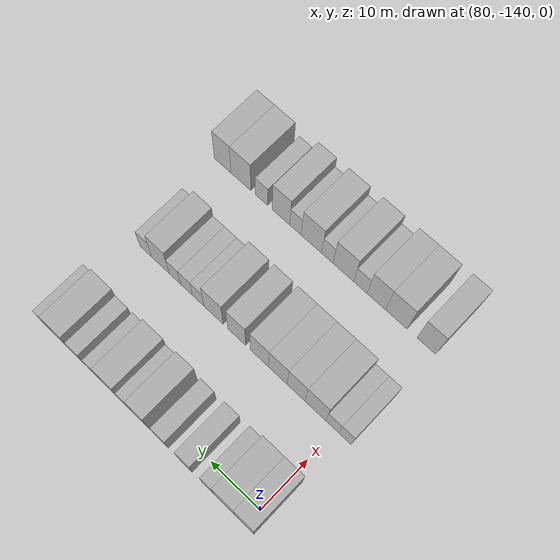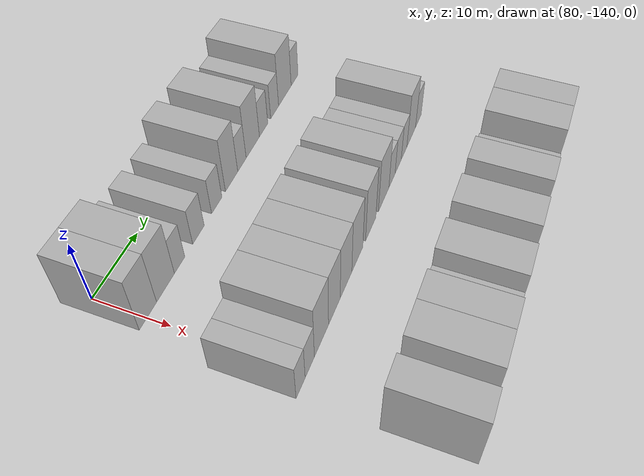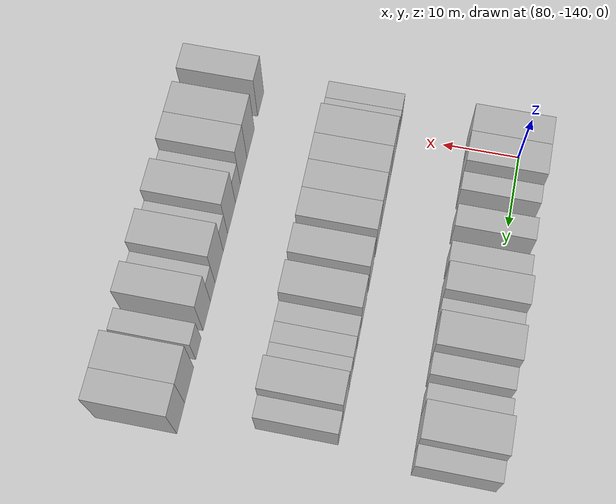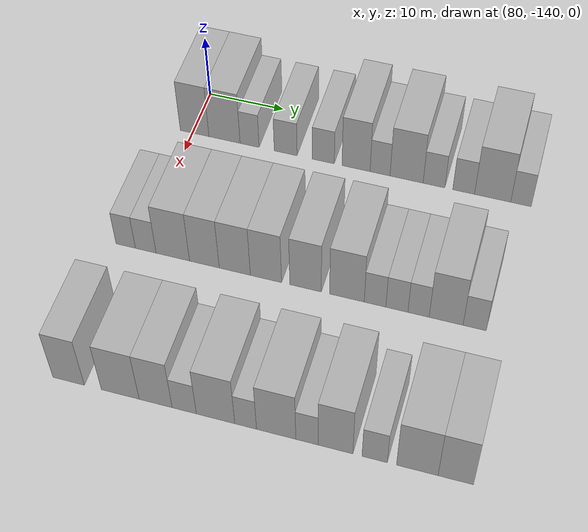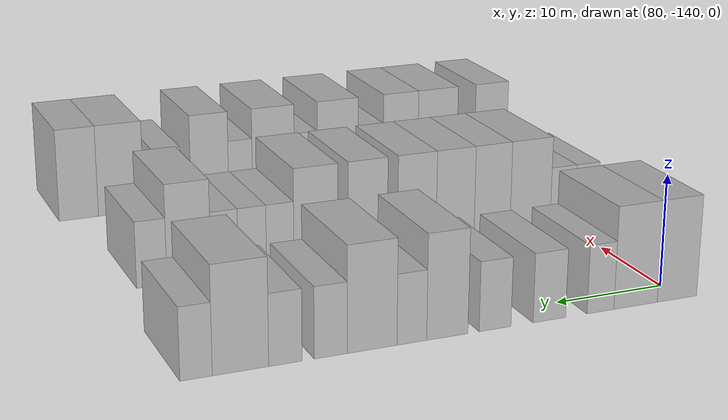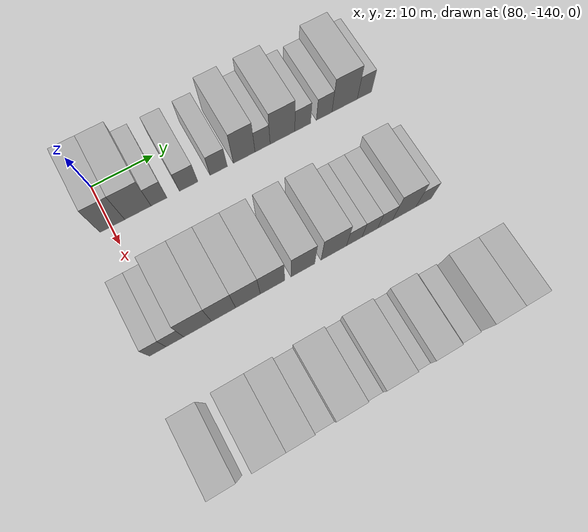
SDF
<sdf version="1.6">
 <world name="default">
  <model name="building_572">
   <static>1</static>
   <pose>82.0000 -139.7376 0 0.000000 0.000000 0.000000</pose>
   <link name="link">
    <pose>0 0 4.50 0 0 0</pose>
    <collision name="collision"><geometry><box><size>10.0000 3.8432 9.0000</size></box></geometry></collision>
    <visual name="visual">
     <cast_shadows>0</cast_shadows>
     <geometry><box><size>10.0000 3.8432 9.0000</size></box></geometry>
     <material>
      <script>
       <uri>model://HANNAS_wall/materials/scripts</uri>
       <uri>model://HANNAS_wall/materials/textures</uri>
       <name>vrc/HANNAS_wall</name>
      </script>
     </material>
    </visual>
   </link>
  </model>
  <model name="building_573">
   <static>1</static>
   <pose>82.0000 -135.7377 0 0.000000 0.000000 0.000000</pose>
   <link name="link">
    <pose>0 0 4.50 0 0 0</pose>
    <collision name="collision"><geometry><box><size>10.0000 4.1565 9.0000</size></box></geometry></collision>
    <visual name="visual">
     <cast_shadows>0</cast_shadows>
     <geometry><box><size>10.0000 4.1565 9.0000</size></box></geometry>
     <material>
      <script>
       <uri>model://HANNAS_wall/materials/scripts</uri>
       <uri>model://HANNAS_wall/materials/textures</uri>
       <name>vrc/HANNAS_wall</name>
      </script>
     </material>
    </visual>
   </link>
  </model>
  <model name="building_574">
   <static>1</static>
   <pose>82.0000 -132.3970 0 0.000000 0.000000 0.000000</pose>
   <link name="link">
    <pose>0 0 3.00 0 0 0</pose>
    <collision name="collision"><geometry><box><size>10.0000 2.5249 6.0000</size></box></geometry></collision>
    <visual name="visual">
     <cast_shadows>0</cast_shadows>
     <geometry><box><size>10.0000 2.5249 6.0000</size></box></geometry>
     <material>
      <script>
       <uri>model://HANNAS_wall/materials/scripts</uri>
       <uri>model://HANNAS_wall/materials/textures</uri>
       <name>vrc/HANNAS_wall</name>
      </script>
     </material>
    </visual>
   </link>
  </model>
  <model name="building_575">
   <static>1</static>
   <pose>82.0000 -127.6400 0 0.000000 0.000000 0.000000</pose>
   <link name="link">
    <pose>0 0 3.00 0 0 0</pose>
    <collision name="collision"><geometry><box><size>10.0000 2.9891 6.0000</size></box></geometry></collision>
    <visual name="visual">
     <cast_shadows>0</cast_shadows>
     <geometry><box><size>10.0000 2.9891 6.0000</size></box></geometry>
     <material>
      <script>
       <uri>model://HANNAS_wall/materials/scripts</uri>
       <uri>model://HANNAS_wall/materials/textures</uri>
       <name>vrc/HANNAS_wall</name>
      </script>
     </material>
    </visual>
   </link>
  </model>
  <model name="building_576">
   <static>1</static>
   <pose>82.0000 -122.7217 0 0.000000 0.000000 0.000000</pose>
   <link name="link">
    <pose>0 0 3.00 0 0 0</pose>
    <collision name="collision"><geometry><box><size>10.0000 2.8474 6.0000</size></box></geometry></collision>
    <visual name="visual">
     <cast_shadows>0</cast_shadows>
     <geometry><box><size>10.0000 2.8474 6.0000</size></box></geometry>
     <material>
      <script>
       <uri>model://HANNAS_wall/materials/scripts</uri>
       <uri>model://HANNAS_wall/materials/textures</uri>
       <name>vrc/HANNAS_wall</name>
      </script>
     </material>
    </visual>
   </link>
  </model>
  <model name="building_577">
   <static>1</static>
   <pose>82.0000 -118.4914 0 0.000000 0.000000 0.000000</pose>
   <link name="link">
    <pose>0 0 4.50 0 0 0</pose>
    <collision name="collision"><geometry><box><size>10.0000 3.6134 9.0000</size></box></geometry></collision>
    <visual name="visual">
     <cast_shadows>0</cast_shadows>
     <geometry><box><size>10.0000 3.6134 9.0000</size></box></geometry>
     <material>
      <script>
       <uri>model://HANNAS_wall/materials/scripts</uri>
       <uri>model://HANNAS_wall/materials/textures</uri>
       <name>vrc/HANNAS_wall</name>
      </script>
     </material>
    </visual>
   </link>
  </model>
  <model name="building_578">
   <static>1</static>
   <pose>82.0000 -115.4076 0 0.000000 0.000000 0.000000</pose>
   <link name="link">
    <pose>0 0 3.00 0 0 0</pose>
    <collision name="collision"><geometry><box><size>10.0000 2.5542 6.0000</size></box></geometry></collision>
    <visual name="visual">
     <cast_shadows>0</cast_shadows>
     <geometry><box><size>10.0000 2.5542 6.0000</size></box></geometry>
     <material>
      <script>
       <uri>model://HANNAS_wall/materials/scripts</uri>
       <uri>model://HANNAS_wall/materials/textures</uri>
       <name>vrc/HANNAS_wall</name>
      </script>
     </material>
    </visual>
   </link>
  </model>
  <model name="building_579">
   <static>1</static>
   <pose>82.0000 -112.0254 0 0.000000 0.000000 0.000000</pose>
   <link name="link">
    <pose>0 0 4.50 0 0 0</pose>
    <collision name="collision"><geometry><box><size>10.0000 4.2101 9.0000</size></box></geometry></collision>
    <visual name="visual">
     <cast_shadows>0</cast_shadows>
     <geometry><box><size>10.0000 4.2101 9.0000</size></box></geometry>
     <material>
      <script>
       <uri>model://HANNAS_wall/materials/scripts</uri>
       <uri>model://HANNAS_wall/materials/textures</uri>
       <name>vrc/HANNAS_wall</name>
      </script>
     </material>
    </visual>
   </link>
  </model>
  <model name="building_580">
   <static>1</static>
   <pose>82.0000 -108.5517 0 0.000000 0.000000 0.000000</pose>
   <link name="link">
    <pose>0 0 3.00 0 0 0</pose>
    <collision name="collision"><geometry><box><size>10.0000 2.7372 6.0000</size></box></geometry></collision>
    <visual name="visual">
     <cast_shadows>0</cast_shadows>
     <geometry><box><size>10.0000 2.7372 6.0000</size></box></geometry>
     <material>
      <script>
       <uri>model://HANNAS_wall/materials/scripts</uri>
       <uri>model://HANNAS_wall/materials/textures</uri>
       <name>vrc/HANNAS_wall</name>
      </script>
     </material>
    </visual>
   </link>
  </model>
  <model name="building_581">
   <static>1</static>
   <pose>82.0000 -104.8235 0 0.000000 0.000000 0.000000</pose>
   <link name="link">
    <pose>0 0 3.00 0 0 0</pose>
    <collision name="collision"><geometry><box><size>10.0000 2.7193 6.0000</size></box></geometry></collision>
    <visual name="visual">
     <cast_shadows>0</cast_shadows>
     <geometry><box><size>10.0000 2.7193 6.0000</size></box></geometry>
     <material>
      <script>
       <uri>model://HANNAS_wall/materials/scripts</uri>
       <uri>model://HANNAS_wall/materials/textures</uri>
       <name>vrc/HANNAS_wall</name>
      </script>
     </material>
    </visual>
   </link>
  </model>
  <model name="building_582">
   <static>1</static>
   <pose>82.0000 -101.2158 0 0.000000 0.000000 0.000000</pose>
   <link name="link">
    <pose>0 0 4.50 0 0 0</pose>
    <collision name="collision"><geometry><box><size>10.0000 4.4960 9.0000</size></box></geometry></collision>
    <visual name="visual">
     <cast_shadows>0</cast_shadows>
     <geometry><box><size>10.0000 4.4960 9.0000</size></box></geometry>
     <material>
      <script>
       <uri>model://HANNAS_wall/materials/scripts</uri>
       <uri>model://HANNAS_wall/materials/textures</uri>
       <name>vrc/HANNAS_wall</name>
      </script>
     </material>
    </visual>
   </link>
  </model>
  <model name="building_583">
   <static>1</static>
   <pose>82.0000 -97.6977 0 0.000000 0.000000 0.000000</pose>
   <link name="link">
    <pose>0 0 3.00 0 0 0</pose>
    <collision name="collision"><geometry><box><size>10.0000 2.5402 6.0000</size></box></geometry></collision>
    <visual name="visual">
     <cast_shadows>0</cast_shadows>
     <geometry><box><size>10.0000 2.5402 6.0000</size></box></geometry>
     <material>
      <script>
       <uri>model://HANNAS_wall/materials/scripts</uri>
       <uri>model://HANNAS_wall/materials/textures</uri>
       <name>vrc/HANNAS_wall</name>
      </script>
     </material>
    </visual>
   </link>
  </model>
  <model name="building_748">
   <static>1</static>
   <pose>101.0000 -141.8293 0 0.000000 0.000000 0.000000</pose>
   <link name="link">
    <pose>0 0 3.00 0 0 0</pose>
    <collision name="collision"><geometry><box><size>10.0000 2.4516 6.0000</size></box></geometry></collision>
    <visual name="visual">
     <cast_shadows>0</cast_shadows>
     <geometry><box><size>10.0000 2.4516 6.0000</size></box></geometry>
     <material>
      <script>
       <uri>model://HANNAS_wall/materials/scripts</uri>
       <uri>model://HANNAS_wall/materials/textures</uri>
       <name>vrc/HANNAS_wall</name>
      </script>
     </material>
    </visual>
   </link>
  </model>
  <model name="building_749">
   <static>1</static>
   <pose>101.0000 -139.2995 0 0.000000 0.000000 0.000000</pose>
   <link name="link">
    <pose>0 0 3.00 0 0 0</pose>
    <collision name="collision"><geometry><box><size>10.0000 2.6080 6.0000</size></box></geometry></collision>
    <visual name="visual">
     <cast_shadows>0</cast_shadows>
     <geometry><box><size>10.0000 2.6080 6.0000</size></box></geometry>
     <material>
      <script>
       <uri>model://HANNAS_wall/materials/scripts</uri>
       <uri>model://HANNAS_wall/materials/textures</uri>
       <name>vrc/HANNAS_wall</name>
      </script>
     </material>
    </visual>
   </link>
  </model>
  <model name="building_750">
   <static>1</static>
   <pose>101.0000 -135.8987 0 0.000000 0.000000 0.000000</pose>
   <link name="link">
    <pose>0 0 4.50 0 0 0</pose>
    <collision name="collision"><geometry><box><size>10.0000 4.1936 9.0000</size></box></geometry></collision>
    <visual name="visual">
     <cast_shadows>0</cast_shadows>
     <geometry><box><size>10.0000 4.1936 9.0000</size></box></geometry>
     <material>
      <script>
       <uri>model://HANNAS_wall/materials/scripts</uri>
       <uri>model://HANNAS_wall/materials/textures</uri>
       <name>vrc/HANNAS_wall</name>
      </script>
     </material>
    </visual>
   </link>
  </model>
  <model name="building_751">
   <static>1</static>
   <pose>101.0000 -131.9583 0 0.000000 0.000000 0.000000</pose>
   <link name="link">
    <pose>0 0 4.50 0 0 0</pose>
    <collision name="collision"><geometry><box><size>10.0000 3.6871 9.0000</size></box></geometry></collision>
    <visual name="visual">
     <cast_shadows>0</cast_shadows>
     <geometry><box><size>10.0000 3.6871 9.0000</size></box></geometry>
     <material>
      <script>
       <uri>model://HANNAS_wall/materials/scripts</uri>
       <uri>model://HANNAS_wall/materials/textures</uri>
       <name>vrc/HANNAS_wall</name>
      </script>
     </material>
    </visual>
   </link>
  </model>
  <model name="building_752">
   <static>1</static>
   <pose>101.0000 -128.1986 0 0.000000 0.000000 0.000000</pose>
   <link name="link">
    <pose>0 0 4.50 0 0 0</pose>
    <collision name="collision"><geometry><box><size>10.0000 3.8325 9.0000</size></box></geometry></collision>
    <visual name="visual">
     <cast_shadows>0</cast_shadows>
     <geometry><box><size>10.0000 3.8325 9.0000</size></box></geometry>
     <material>
      <script>
       <uri>model://HANNAS_wall/materials/scripts</uri>
       <uri>model://HANNAS_wall/materials/textures</uri>
       <name>vrc/HANNAS_wall</name>
      </script>
     </material>
    </visual>
   </link>
  </model>
  <model name="building_753">
   <static>1</static>
   <pose>101.0000 -124.3731 0 0.000000 0.000000 0.000000</pose>
   <link name="link">
    <pose>0 0 4.50 0 0 0</pose>
    <collision name="collision"><geometry><box><size>10.0000 3.8185 9.0000</size></box></geometry></collision>
    <visual name="visual">
     <cast_shadows>0</cast_shadows>
     <geometry><box><size>10.0000 3.8185 9.0000</size></box></geometry>
     <material>
      <script>
       <uri>model://HANNAS_wall/materials/scripts</uri>
       <uri>model://HANNAS_wall/materials/textures</uri>
       <name>vrc/HANNAS_wall</name>
      </script>
     </material>
    </visual>
   </link>
  </model>
  <model name="building_754">
   <static>1</static>
   <pose>101.0000 -119.5640 0 0.000000 0.000000 0.000000</pose>
   <link name="link">
    <pose>0 0 4.50 0 0 0</pose>
    <collision name="collision"><geometry><box><size>10.0000 3.7996 9.0000</size></box></geometry></collision>
    <visual name="visual">
     <cast_shadows>0</cast_shadows>
     <geometry><box><size>10.0000 3.7996 9.0000</size></box></geometry>
     <material>
      <script>
       <uri>model://HANNAS_wall/materials/scripts</uri>
       <uri>model://HANNAS_wall/materials/textures</uri>
       <name>vrc/HANNAS_wall</name>
      </script>
     </material>
    </visual>
   </link>
  </model>
  <model name="building_755">
   <static>1</static>
   <pose>101.0000 -114.5919 0 0.000000 0.000000 0.000000</pose>
   <link name="link">
    <pose>0 0 4.50 0 0 0</pose>
    <collision name="collision"><geometry><box><size>10.0000 4.1445 9.0000</size></box></geometry></collision>
    <visual name="visual">
     <cast_shadows>0</cast_shadows>
     <geometry><box><size>10.0000 4.1445 9.0000</size></box></geometry>
     <material>
      <script>
       <uri>model://HANNAS_wall/materials/scripts</uri>
       <uri>model://HANNAS_wall/materials/textures</uri>
       <name>vrc/HANNAS_wall</name>
      </script>
     </material>
    </visual>
   </link>
  </model>
  <model name="building_756">
   <static>1</static>
   <pose>101.0000 -111.2377 0 0.000000 0.000000 0.000000</pose>
   <link name="link">
    <pose>0 0 3.00 0 0 0</pose>
    <collision name="collision"><geometry><box><size>10.0000 2.5640 6.0000</size></box></geometry></collision>
    <visual name="visual">
     <cast_shadows>0</cast_shadows>
     <geometry><box><size>10.0000 2.5640 6.0000</size></box></geometry>
     <material>
      <script>
       <uri>model://HANNAS_wall/materials/scripts</uri>
       <uri>model://HANNAS_wall/materials/textures</uri>
       <name>vrc/HANNAS_wall</name>
      </script>
     </material>
    </visual>
   </link>
  </model>
  <model name="building_757">
   <static>1</static>
   <pose>101.0000 -108.6574 0 0.000000 0.000000 0.000000</pose>
   <link name="link">
    <pose>0 0 3.00 0 0 0</pose>
    <collision name="collision"><geometry><box><size>10.0000 2.5964 6.0000</size></box></geometry></collision>
    <visual name="visual">
     <cast_shadows>0</cast_shadows>
     <geometry><box><size>10.0000 2.5964 6.0000</size></box></geometry>
     <material>
      <script>
       <uri>model://HANNAS_wall/materials/scripts</uri>
       <uri>model://HANNAS_wall/materials/textures</uri>
       <name>vrc/HANNAS_wall</name>
      </script>
     </material>
    </visual>
   </link>
  </model>
  <model name="building_758">
   <static>1</static>
   <pose>101.0000 -106.1154 0 0.000000 0.000000 0.000000</pose>
   <link name="link">
    <pose>0 0 3.00 0 0 0</pose>
    <collision name="collision"><geometry><box><size>10.0000 2.4877 6.0000</size></box></geometry></collision>
    <visual name="visual">
     <cast_shadows>0</cast_shadows>
     <geometry><box><size>10.0000 2.4877 6.0000</size></box></geometry>
     <material>
      <script>
       <uri>model://HANNAS_wall/materials/scripts</uri>
       <uri>model://HANNAS_wall/materials/textures</uri>
       <name>vrc/HANNAS_wall</name>
      </script>
     </material>
    </visual>
   </link>
  </model>
  <model name="building_759">
   <static>1</static>
   <pose>101.0000 -102.8947 0 0.000000 0.000000 0.000000</pose>
   <link name="link">
    <pose>0 0 4.50 0 0 0</pose>
    <collision name="collision"><geometry><box><size>10.0000 3.9538 9.0000</size></box></geometry></collision>
    <visual name="visual">
     <cast_shadows>0</cast_shadows>
     <geometry><box><size>10.0000 3.9538 9.0000</size></box></geometry>
     <material>
      <script>
       <uri>model://HANNAS_wall/materials/scripts</uri>
       <uri>model://HANNAS_wall/materials/textures</uri>
       <name>vrc/HANNAS_wall</name>
      </script>
     </material>
    </visual>
   </link>
  </model>
  <model name="building_760">
   <static>1</static>
   <pose>101.0000 -99.5779 0 0.000000 0.000000 0.000000</pose>
   <link name="link">
    <pose>0 0 3.00 0 0 0</pose>
    <collision name="collision"><geometry><box><size>10.0000 2.6797 6.0000</size></box></geometry></collision>
    <visual name="visual">
     <cast_shadows>0</cast_shadows>
     <geometry><box><size>10.0000 2.6797 6.0000</size></box></geometry>
     <material>
      <script>
       <uri>model://HANNAS_wall/materials/scripts</uri>
       <uri>model://HANNAS_wall/materials/textures</uri>
       <name>vrc/HANNAS_wall</name>
      </script>
     </material>
    </visual>
   </link>
  </model>
  <model name="building_916">
   <static>1</static>
   <pose>120.0000 -141.2813 0 0.000000 0.000000 0.000000</pose>
   <link name="link">
    <pose>0 0 4.50 0 0 0</pose>
    <collision name="collision"><geometry><box><size>10.0000 3.7252 9.0000</size></box></geometry></collision>
    <visual name="visual">
     <cast_shadows>0</cast_shadows>
     <geometry><box><size>10.0000 3.7252 9.0000</size></box></geometry>
     <material>
      <script>
       <uri>model://HANNAS_wall/materials/scripts</uri>
       <uri>model://HANNAS_wall/materials/textures</uri>
       <name>vrc/HANNAS_wall</name>
      </script>
     </material>
    </visual>
   </link>
  </model>
  <model name="building_917">
   <static>1</static>
   <pose>120.0000 -135.2108 0 0.000000 0.000000 0.000000</pose>
   <link name="link">
    <pose>0 0 4.50 0 0 0</pose>
    <collision name="collision"><geometry><box><size>10.0000 4.4157 9.0000</size></box></geometry></collision>
    <visual name="visual">
     <cast_shadows>0</cast_shadows>
     <geometry><box><size>10.0000 4.4157 9.0000</size></box></geometry>
     <material>
      <script>
       <uri>model://HANNAS_wall/materials/scripts</uri>
       <uri>model://HANNAS_wall/materials/textures</uri>
       <name>vrc/HANNAS_wall</name>
      </script>
     </material>
    </visual>
   </link>
  </model>
  <model name="building_918">
   <static>1</static>
   <pose>120.0000 -131.0910 0 0.000000 0.000000 0.000000</pose>
   <link name="link">
    <pose>0 0 4.50 0 0 0</pose>
    <collision name="collision"><geometry><box><size>10.0000 3.8239 9.0000</size></box></geometry></collision>
    <visual name="visual">
     <cast_shadows>0</cast_shadows>
     <geometry><box><size>10.0000 3.8239 9.0000</size></box></geometry>
     <material>
      <script>
       <uri>model://HANNAS_wall/materials/scripts</uri>
       <uri>model://HANNAS_wall/materials/textures</uri>
       <name>vrc/HANNAS_wall</name>
      </script>
     </material>
    </visual>
   </link>
  </model>
  <model name="building_919">
   <static>1</static>
   <pose>120.0000 -127.7886 0 0.000000 0.000000 0.000000</pose>
   <link name="link">
    <pose>0 0 3.00 0 0 0</pose>
    <collision name="collision"><geometry><box><size>10.0000 2.7808 6.0000</size></box></geometry></collision>
    <visual name="visual">
     <cast_shadows>0</cast_shadows>
     <geometry><box><size>10.0000 2.7808 6.0000</size></box></geometry>
     <material>
      <script>
       <uri>model://HANNAS_wall/materials/scripts</uri>
       <uri>model://HANNAS_wall/materials/textures</uri>
       <name>vrc/HANNAS_wall</name>
      </script>
     </material>
    </visual>
   </link>
  </model>
  <model name="building_920">
   <static>1</static>
   <pose>120.0000 -124.2121 0 0.000000 0.000000 0.000000</pose>
   <link name="link">
    <pose>0 0 4.50 0 0 0</pose>
    <collision name="collision"><geometry><box><size>10.0000 4.3722 9.0000</size></box></geometry></collision>
    <visual name="visual">
     <cast_shadows>0</cast_shadows>
     <geometry><box><size>10.0000 4.3722 9.0000</size></box></geometry>
     <material>
      <script>
       <uri>model://HANNAS_wall/materials/scripts</uri>
       <uri>model://HANNAS_wall/materials/textures</uri>
       <name>vrc/HANNAS_wall</name>
      </script>
     </material>
    </visual>
   </link>
  </model>
  <model name="building_921">
   <static>1</static>
   <pose>120.0000 -120.7994 0 0.000000 0.000000 0.000000</pose>
   <link name="link">
    <pose>0 0 3.00 0 0 0</pose>
    <collision name="collision"><geometry><box><size>10.0000 2.4531 6.0000</size></box></geometry></collision>
    <visual name="visual">
     <cast_shadows>0</cast_shadows>
     <geometry><box><size>10.0000 2.4531 6.0000</size></box></geometry>
     <material>
      <script>
       <uri>model://HANNAS_wall/materials/scripts</uri>
       <uri>model://HANNAS_wall/materials/textures</uri>
       <name>vrc/HANNAS_wall</name>
      </script>
     </material>
    </visual>
   </link>
  </model>
  <model name="building_922">
   <static>1</static>
   <pose>120.0000 -117.3739 0 0.000000 0.000000 0.000000</pose>
   <link name="link">
    <pose>0 0 4.50 0 0 0</pose>
    <collision name="collision"><geometry><box><size>10.0000 4.3980 9.0000</size></box></geometry></collision>
    <visual name="visual">
     <cast_shadows>0</cast_shadows>
     <geometry><box><size>10.0000 4.3980 9.0000</size></box></geometry>
     <material>
      <script>
       <uri>model://HANNAS_wall/materials/scripts</uri>
       <uri>model://HANNAS_wall/materials/textures</uri>
       <name>vrc/HANNAS_wall</name>
      </script>
     </material>
    </visual>
   </link>
  </model>
  <model name="building_923">
   <static>1</static>
   <pose>120.0000 -113.9406 0 0.000000 0.000000 0.000000</pose>
   <link name="link">
    <pose>0 0 3.00 0 0 0</pose>
    <collision name="collision"><geometry><box><size>10.0000 2.4685 6.0000</size></box></geometry></collision>
    <visual name="visual">
     <cast_shadows>0</cast_shadows>
     <geometry><box><size>10.0000 2.4685 6.0000</size></box></geometry>
     <material>
      <script>
       <uri>model://HANNAS_wall/materials/scripts</uri>
       <uri>model://HANNAS_wall/materials/textures</uri>
       <name>vrc/HANNAS_wall</name>
      </script>
     </material>
    </visual>
   </link>
  </model>
  <model name="building_924">
   <static>1</static>
   <pose>120.0000 -110.7836 0 0.000000 0.000000 0.000000</pose>
   <link name="link">
    <pose>0 0 4.50 0 0 0</pose>
    <collision name="collision"><geometry><box><size>10.0000 3.8456 9.0000</size></box></geometry></collision>
    <visual name="visual">
     <cast_shadows>0</cast_shadows>
     <geometry><box><size>10.0000 3.8456 9.0000</size></box></geometry>
     <material>
      <script>
       <uri>model://HANNAS_wall/materials/scripts</uri>
       <uri>model://HANNAS_wall/materials/textures</uri>
       <name>vrc/HANNAS_wall</name>
      </script>
     </material>
    </visual>
   </link>
  </model>
  <model name="building_925">
   <static>1</static>
   <pose>120.0000 -106.4812 0 0.000000 0.000000 0.000000</pose>
   <link name="link">
    <pose>0 0 3.00 0 0 0</pose>
    <collision name="collision"><geometry><box><size>10.0000 2.7593 6.0000</size></box></geometry></collision>
    <visual name="visual">
     <cast_shadows>0</cast_shadows>
     <geometry><box><size>10.0000 2.7593 6.0000</size></box></geometry>
     <material>
      <script>
       <uri>model://HANNAS_wall/materials/scripts</uri>
       <uri>model://HANNAS_wall/materials/textures</uri>
       <name>vrc/HANNAS_wall</name>
      </script>
     </material>
    </visual>
   </link>
  </model>
  <model name="building_926">
   <static>1</static>
   <pose>120.0000 -101.8594 0 0.000000 0.000000 0.000000</pose>
   <link name="link">
    <pose>0 0 4.50 0 0 0</pose>
    <collision name="collision"><geometry><box><size>10.0000 4.4843 9.0000</size></box></geometry></collision>
    <visual name="visual">
     <cast_shadows>0</cast_shadows>
     <geometry><box><size>10.0000 4.4843 9.0000</size></box></geometry>
     <material>
      <script>
       <uri>model://HANNAS_wall/materials/scripts</uri>
       <uri>model://HANNAS_wall/materials/textures</uri>
       <name>vrc/HANNAS_wall</name>
      </script>
     </material>
    </visual>
   </link>
  </model>
  <model name="building_927">
   <static>1</static>
   <pose>120.0000 -97.7243 0 0.000000 0.000000 0.000000</pose>
   <link name="link">
    <pose>0 0 4.50 0 0 0</pose>
    <collision name="collision"><geometry><box><size>10.0000 3.7859 9.0000</size></box></geometry></collision>
    <visual name="visual">
     <cast_shadows>0</cast_shadows>
     <geometry><box><size>10.0000 3.7859 9.0000</size></box></geometry>
     <material>
      <script>
       <uri>model://HANNAS_wall/materials/scripts</uri>
       <uri>model://HANNAS_wall/materials/textures</uri>
       <name>vrc/HANNAS_wall</name>
      </script>
     </material>
    </visual>
   </link>
  </model>
 </world>
</sdf>
